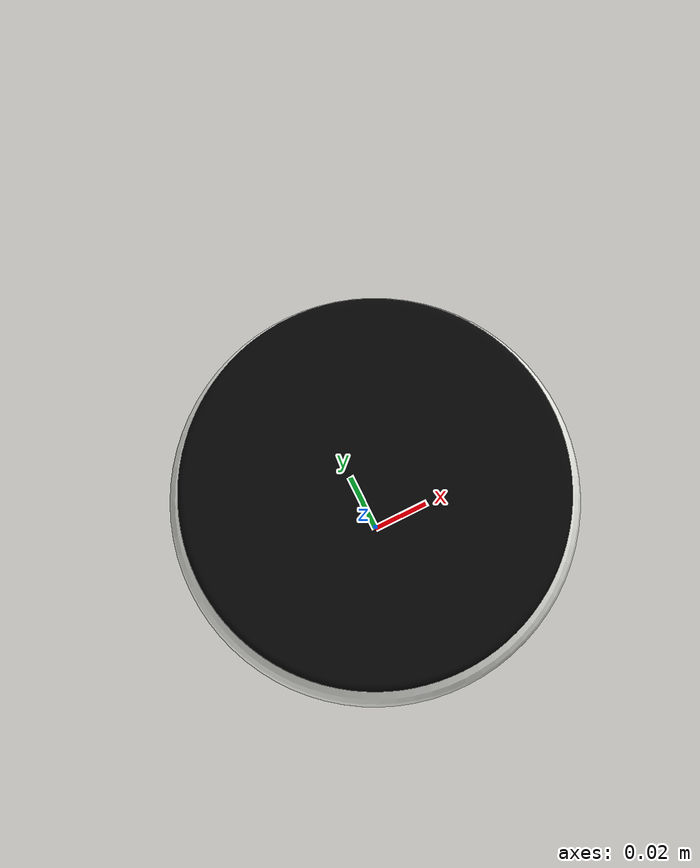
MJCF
<mujoco model="jar_500ml">
  <asset>
    <mesh name="jar_500ml_00" file="jar_500ml_00.obj" inertia="exact"/>
    <mesh name="jar_500ml_01" file="jar_500ml_01.obj" inertia="exact"/>
    <mesh name="jar_500ml_02" file="jar_500ml_02.obj" inertia="exact"/>
    <mesh name="jar_500ml_03" file="jar_500ml_03.obj" inertia="exact"/>
  </asset>
  <worldbody>
    <body name="jar_500ml">
      <geom type="mesh" mesh="jar_500ml_00" rgba="0.020 0.020 0.020 1.000" density="950"/>  <!-- Cap_PP_Black -->
      <geom type="mesh" mesh="jar_500ml_01" rgba="1.000 1.000 1.000 1.000" density="950"/>  <!-- Label_Ambroxan -->
      <geom type="mesh" mesh="jar_500ml_02" rgba="0.990 0.990 0.980 1.000" density="950"/>  <!-- Powder_Ambroxan -->
      <geom type="mesh" mesh="jar_500ml_03" rgba="0.930 0.930 0.910 1.000" density="950"/>  <!-- HDPE_White -->
    </body>
  </worldbody>
</mujoco>
